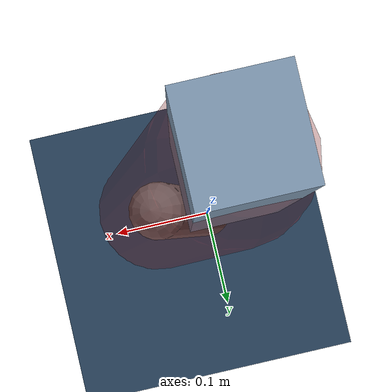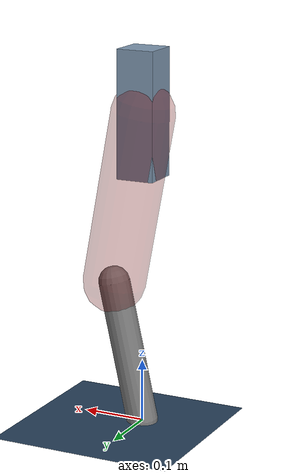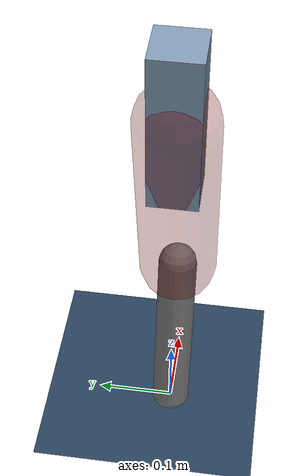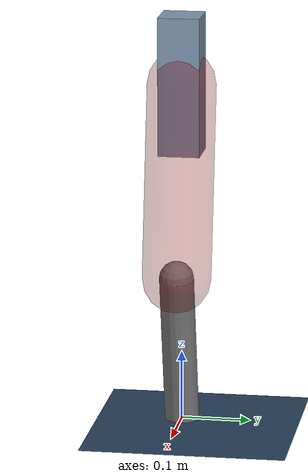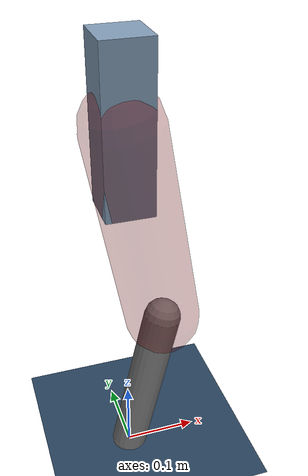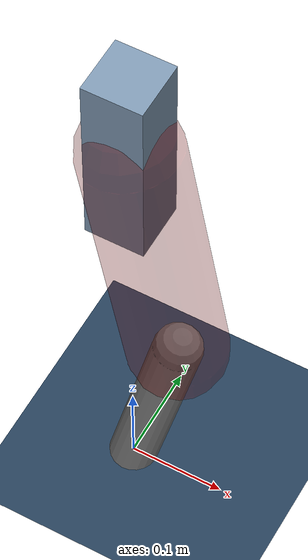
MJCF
<mujoco model="Hopper2D">
	<compiler inertiafromgeom="true" angle="radian" />
	<option timestep="0.001" integrator="implicit" cone="elliptic" solver="Newton" tolerance="1e-10" />

	<default>
		<geom contype="1" conaffinity="1" condim="3" friction="2 0.005 0.0001" solref="0.005 1" />
		<joint limited="true" damping="0.1" />
	</default>

	<asset>
		<texture name="skybox" type="skybox" builtin="gradient" rgb1=".4 .6 .8" rgb2="0 0 0" width="800" height="800" />
		<texture name="grid" type="2d" builtin="checker" rgb1=".1 .2 .3" rgb2=".2 .3 .4" width="300" height="300" mark="edge" markrgb=".2 .3 .4" />
		<material name="ground" texture="grid" texrepeat="1 1" texuniform="true" reflectance="0.1" />
		<material name="leg" rgba="0.5 0.6 0.7 1" />
	</asset>

	<worldbody>

		<geom name="floor" type="plane" size="5 5 0.25" material="ground" />

		<light directional="false" diffuse="0.8 0.8 0.8" specular="0.3 0.3 0.3" pos="0 0 2" dir="0 0 -1" />
		<light mode="targetbodycom" target="base" directional="false" diffuse="0.8 0.8 0.8" specular="0.3 0.3 0.3" pos="0 0 2" dir="0 0 -1" />

		<camera name="fixed" pos="0 -2 1" xyaxes="1 0 0 0 0 1" />
		<camera name="tracking" mode="trackcom" pos="0 -3 1" />

		<body name="root" pos="0 0 0.4970059936484372">
			<joint name="slide_x" type="slide" axis="1 0 0" range="-100 100" />
			<joint name="slide_z" type="slide" axis="0 0 1" range="0 10" />

			<body name="base" pos="0 0 0">
				<geom name="torso" type="box" size="0.03 0.03 0.1" mass="2.237" material="leg" />

				<body name="link1" pos="0 0 0" euler="0 1.3901294996381122 0">
					<joint type="hinge" axis="0 -1 0" pos="0 0 0" name="hinge1" limited="true" range="-3.14 3.14" stiffness="0" damping="0.1" />
					<geom name="thigh" type="capsule" fromto="0 0 0 0.2775166045037836 0 0" size="0.05" rgba="0.5 0 0 0.3" mass="0.9285431717098374" />

					<body name="link2" pos="0.2775166045037836 0 0" euler="0 0.39970403255438386 0">
						<joint type="hinge" axis="0 -1 0" pos="0 0 0" name="hinge2" limited="true" range="-3.14 3.14" stiffness="0" damping="0.1" />
						<geom name="shank" type="capsule" fromto="0 0 0 0.22948938914465367 0 0" size="0.025" mass="0.4255915113157229" />

					</body>
				</body>
			</body>
		</body>
	</worldbody>

	<actuator>
		<motor name="torque1" joint="hinge1" ctrlrange="-22.40165066800603 22.40165066800603" ctrllimited="true" gear="1" />
		<motor name="torque2" joint="hinge2" ctrlrange="-127.91572088263334 127.91572088263334" ctrllimited="true" gear="1" />
	</actuator>
</mujoco>
